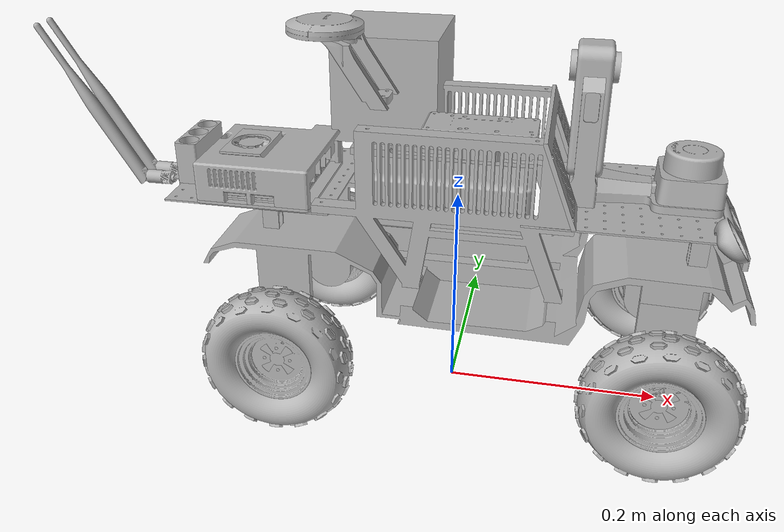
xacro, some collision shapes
<?xml version="1.0" ?>
<robot name="ugv" xmlns:xacro="http://www.ros.org/wiki/xacro">

<xacro:include filename="$(find ugv_description)/urdf/materials.xacro" />
<xacro:include filename="$(find ugv_description)/urdf/ugv.trans" />
<xacro:include filename="$(find ugv_description)/urdf/ugv.gazebo" />

<!-- Robot Footprint -->
<link name="base_link"/>

<joint name="base_joint" type="fixed">
  <parent link="base_link"/>
  <child link="base_plate"/>
  <origin xyz="-0.075 0.075 0.28375" rpy="0 0 0"/>
</joint>

<link name="base_plate">
  <inertial>
    <origin xyz="0.07499999999999711 -0.07499999999999997 0.0006625999999999998" rpy="0 0 0"/>
    <mass value="0.2720807790827568"/>
    <inertia ixx="0.00051" iyy="0.00051" izz="0.001021" ixy="0.0" iyz="0.0" ixz="0.0"/>
  </inertial>
  <visual>
    <origin xyz="0 0 0" rpy="0 0 0"/>
    <geometry>
      <mesh filename="package://ugv_description/meshes/base_plate.stl" scale="0.001 0.001 0.001"/>
    </geometry>
    <material name="silver"/>
  </visual>
  <collision>
    <origin xyz="0 0 0" rpy="0 0 0"/>
    <geometry>
      <box size="0.1 0.1 0.1"/>
    </geometry>
  </collision>
</link>

<link name="RightSupport_v1_1">
  <inertial>
    <origin xyz="0.07059984434936706 -0.0029361126231948476 -0.05717627321515905" rpy="0 0 0"/>
    <mass value="0.736158308473094"/>
    <inertia ixx="0.001003" iyy="0.003358" izz="0.002373" ixy="9e-06" iyz="-4e-06" ixz="5.4e-05"/>
  </inertial>
  <visual>
    <origin xyz="-0.0075 0.1425 0.000125" rpy="0 0 0"/>
    <geometry>
      <mesh filename="package://ugv_description/meshes/RightSupport_v1_1.stl" scale="0.001 0.001 0.001"/>
    </geometry>
    <material name="silver"/>
  </visual>
  <collision>
    <origin xyz="-0.0075 0.1425 0.000125" rpy="0 0 0"/>
    <geometry>
      <box size="0.1 0.1 0.1"/>
    </geometry>
  </collision>
</link>

<link name="LeftSupport_v1_1">
  <inertial>
    <origin xyz="0.07059984434936703 0.002936112623194766 -0.05717627321515946" rpy="0 0 0"/>
    <mass value="0.7361583084730937"/>
    <inertia ixx="0.001003" iyy="0.003358" izz="0.002373" ixy="-9e-06" iyz="4e-06" ixz="5.4e-05"/>
  </inertial>
  <visual>
    <origin xyz="-0.0075 0.0075 0.000125" rpy="0 0 0"/>
    <geometry>
      <mesh filename="package://ugv_description/meshes/LeftSupport_v1_1.stl" scale="0.001 0.001 0.001"/>
    </geometry>
    <material name="silver"/>
  </visual>
  <collision>
    <origin xyz="-0.0075 0.0075 0.000125" rpy="0 0 0"/>
    <geometry>
      <box size="0.1 0.1 0.1"/>
    </geometry>
  </collision>
</link>

<link name="Mounting_Plate_v3_v1_1">
  <inertial>
    <origin xyz="0.06749999995669587 0.06749999999999994 0.0007876040969322512" rpy="0 0 0"/>
    <mass value="0.2720807790827568"/>
    <inertia ixx="0.00051" iyy="0.00051" izz="0.001021" ixy="0.0" iyz="-0.0" ixz="-0.0"/>
  </inertial>
  <visual>
    <origin xyz="-0.1595 0.1425 0.07325" rpy="0 0 0"/>
    <geometry>
      <mesh filename="package://ugv_description/meshes/Mounting_Plate_v3_v1_1.stl" scale="0.001 0.001 0.001"/>
    </geometry>
    <material name="silver"/>
  </visual>
  <collision>
    <origin xyz="0 0 0" rpy="0 0 0"/>
    <geometry>
      <box size="0.27 0.27 0.003"/>
    </geometry>
  </collision>
</link>

<link name="Mounting_Plate_v3_v1__1__1">
  <inertial>
    <origin xyz="-0.06751639011574447 0.06751019132451663 -0.000787199999999974" rpy="0 0 0"/>
    <mass value="0.2721394685220584"/>
    <inertia ixx="0.00051" iyy="0.000511" izz="0.001021" ixy="0.0" iyz="-0.0" ixz="0.0"/>
  </inertial>
  <visual>
    <origin xyz="0.0345 0.1425 0.077325" rpy="0 0 0"/>
    <geometry>
      <mesh filename="package://ugv_description/meshes/Mounting_Plate_v3_v1__1__1.stl" scale="0.001 0.001 0.001"/>
    </geometry>
    <material name="silver"/>
  </visual>
  <collision>
    <origin xyz="0 0 0" rpy="0 0 0"/>
    <geometry>
      <box size="0.27 0.27 0.003"/>
    </geometry>
  </collision>
</link>

<link name="FrontCover_v1_1">
  <inertial>
    <origin xyz="0.013768274332071867 3.469446951953614e-16 -0.03192263359636471" rpy="0 0 0"/>
    <mass value="0.1610650752657614"/>
    <inertia ixx="0.00056" iyy="0.000104" izz="0.000484" ixy="-0.0" iyz="0.0" ixz="3.5e-05"/>
  </inertial>
  <visual>
    <origin xyz="-0.15 0.075 -0.00145" rpy="0 0 0"/>
    <geometry>
      <mesh filename="package://ugv_description/meshes/FrontCover_v1_1.stl" scale="0.001 0.001 0.001"/>
    </geometry>
    <material name="silver"/>
  </visual>
  <collision>
    <origin xyz="0 0 0" rpy="0 0 0"/>
    <geometry>
      <box size="0.15 0.15 0.003"/>
    </geometry>
  </collision>
</link>

<link name="CubeFC_v1_1">
  <inertial>
    <origin xyz="-0.0014080199813744643 9.577973379054638e-06 -0.007821832207682039" rpy="0 0 0"/>
    <mass value="0.1604759232839487"/>
    <inertia ixx="4.6e-05" iyy="0.000125" izz="0.000153" ixy="0.0" iyz="-0.0" ixz="-3e-06"/>
  </inertial>
  <visual>
    <origin xyz="-0.0975 0.1125 0.000125" rpy="0 0 0"/>
    <geometry>
      <mesh filename="package://ugv_description/meshes/CubeFC_v1_1.stl" scale="0.001 0.001 0.001"/>
    </geometry>
    <material name="silver"/>
  </visual>
  <collision>
    <origin xyz="0 0 0" rpy="0 0 0"/>
    <geometry>
      <box size="0.04 0.04 0.02"/>
    </geometry>
  </collision>
</link>

<link name="imu_link">
  <inertial>
    <mass value="0.001"/>
    <origin xyz="0 0 0" rpy="0 0 0"/>
    <inertia ixx="0.0001" ixy="0" ixz="0" iyy="0.0001" iyz="0" izz="0.0001"/>
  </inertial>
</link>

<joint name="imu_joint" type="fixed">
  <parent link="CubeFC_v1_1"/>  <!-- or base_plate -->
  <child link="imu_link"/>
  <origin xyz="0 0 0" rpy="0 0 0"/>
</joint>

<link name="FrontMountFull_v1_1">
  <inertial>
    <origin xyz="0.0279580578284907 -0.05375006604773858 -0.008637150125757026" rpy="0 0 0"/>
    <mass value="0.28337732555839074"/>
    <inertia ixx="0.000749" iyy="7.6e-05" izz="0.000737" ixy="-0.0" iyz="-0.0" ixz="3.2e-05"/>
  </inertial>
  <visual>
    <origin xyz="-0.2795 0.0225 0.07325" rpy="0 0 0"/>
    <geometry>
      <mesh filename="package://ugv_description/meshes/FrontMountFull_v1_1.stl" scale="0.001 0.001 0.001"/>
    </geometry>
    <material name="silver"/>
  </visual>
  <collision>
    <origin xyz="0 0 0" rpy="0 0 0"/>
    <geometry>
      <box size="0.08 0.135 0.02"/>
    </geometry>
  </collision>
</link>

<link name="FrontLight_v1_1">
  <inertial>
    <origin xyz="0.0008376443155606594 -4.214513980860257e-11 0.0005464825713972082" rpy="0 0 0"/>
    <mass value="0.0035944139646964697"/>
    <inertia ixx="0.0" iyy="0.0" izz="0.0" ixy="0.0" iyz="-0.0" ixz="0.0"/>
  </inertial>
  <visual>
    <origin xyz="-0.303776 0.00875 0.072039" rpy="0 0 0"/>
    <geometry>
      <mesh filename="package://ugv_description/meshes/FrontLight_v1_1.stl" scale="0.001 0.001 0.001"/>
    </geometry>
    <material name="silver"/>
  </visual>
  <collision>
    <origin xyz="-0.303776 0.00875 0.072039" rpy="0 0 0"/>
    <geometry>
      <box size="0.1 0.1 0.1"/>
    </geometry>
  </collision>
</link>

<link name="FrontLight_v1__1__1">
  <inertial>
    <origin xyz="0.0008376443155604374 -4.214514848221995e-11 0.0005464825713972637" rpy="0 0 0"/>
    <mass value="0.0035944139646964697"/>
    <inertia ixx="0.0" iyy="0.0" izz="0.0" ixy="-0.0" iyz="0.0" ixz="0.0"/>
  </inertial>
  <visual>
    <origin xyz="-0.303776 0.14375 0.072039" rpy="0 0 0"/>
    <geometry>
      <mesh filename="package://ugv_description/meshes/FrontLight_v1__1__1.stl" scale="0.001 0.001 0.001"/>
    </geometry>
    <material name="silver"/>
  </visual>
  <collision>
    <origin xyz="-0.303776 0.14375 0.072039" rpy="0 0 0"/>
    <geometry>
      <box size="0.1 0.1 0.1"/>
    </geometry>
  </collision>
</link>

<link name="Speaker_v1__1__1">
  <inertial>
    <origin xyz="-0.0018409431685812994 -0.018474000102515965 -0.0007080958537002691" rpy="0 0 0"/>
    <mass value="0.10222453174351626"/>
    <inertia ixx="1.4e-05" iyy="1e-05" izz="1.2e-05" ixy="0.0" iyz="-0.0" ixz="3e-06"/>
  </inertial>
  <visual>
    <origin xyz="-0.305098 0.031776 0.090129" rpy="0 0 0"/>
    <geometry>
      <mesh filename="package://ugv_description/meshes/Speaker_v1__1__1.stl" scale="0.001 0.001 0.001"/>
    </geometry>
    <material name="silver"/>
  </visual>
  <collision>
    <origin xyz="-0.305098 0.031776 0.090129" rpy="0 0 0"/>
    <geometry>
      <box size="0.1 0.1 0.1"/>
    </geometry>
  </collision>
</link>

<link name="Speaker_v1_1">
  <inertial>
    <origin xyz="-0.001840943168581466 0.018473999897483773 -0.0007080958537002691" rpy="0 0 0"/>
    <mass value="0.10222453174351626"/>
    <inertia ixx="1.4e-05" iyy="1e-05" izz="1.2e-05" ixy="0.0" iyz="-0.0" ixz="3e-06"/>
  </inertial>
  <visual>
    <origin xyz="-0.305098 0.120724 0.090129" rpy="0 0 0"/>
    <geometry>
      <mesh filename="package://ugv_description/meshes/Speaker_v1_1.stl" scale="0.001 0.001 0.001"/>
    </geometry>
    <material name="silver"/>
  </visual>
  <collision>
    <origin xyz="-0.305098 0.120724 0.090129" rpy="0 0 0"/>
    <geometry>
      <box size="0.1 0.1 0.1"/>
    </geometry>
  </collision>
</link>

<link name="JetsonCaseBottom_v1_1">
  <inertial>
    <origin xyz="0.0008375000953675105 0.0006130909919737915 0.0020196844512747336" rpy="0 0 0"/>
    <mass value="0.3621318554388684"/>
    <inertia ixx="0.000384" iyy="0.000313" izz="0.000696" ixy="-0.0" iyz="0.0" ixz="0.0"/>
  </inertial>
  <visual>
    <origin xyz="0.0945 0.0975 0.077325" rpy="0 0 0"/>
    <geometry>
      <mesh filename="package://ugv_description/meshes/JetsonCaseBottom_v1_1.stl" scale="0.001 0.001 0.001"/>
    </geometry>
    <material name="silver"/>
  </visual>
  <collision>
    <origin xyz="0 0 0" rpy="0 0 0"/>
    <geometry>
      <box size="0.10 0.06 0.02"/>
    </geometry>
  </collision>
</link>

<link name="KeyHolders_v3_v1_1">
  <inertial>
    <origin xyz="1.1102230246251565e-16 -0.011000000000001618 0.0068557844147923985" rpy="0 0 0"/>
    <mass value="0.1127827330477343"/>
    <inertia ixx="9e-06" iyy="7.7e-05" izz="8.2e-05" ixy="-0.0" iyz="-0.0" ixz="-0.0"/>
  </inertial>
  <visual>
    <origin xyz="0.102 0.0 0.077325" rpy="0 0 0"/>
    <geometry>
      <mesh filename="package://ugv_description/meshes/KeyHolders_v3_v1_1.stl" scale="0.001 0.001 0.001"/>
    </geometry>
    <material name="silver"/>
  </visual>
  <collision>
    <origin xyz="0.102 0.0 0.077325" rpy="0 0 0"/>
    <geometry>
      <box size="0.1 0.1 0.1"/>
    </geometry>
  </collision>
</link>

<link name="3ButtonMount_v1_1">
  <inertial>
    <origin xyz="-0.0007243164609797015 0.00040991617311861295 0.020396118581781475" rpy="0 0 0"/>
    <mass value="0.1671642206432581"/>
    <inertia ixx="8.2e-05" iyy="2.8e-05" izz="7.2e-05" ixy="-0.0" iyz="1e-06" ixz="-3e-06"/>
  </inertial>
  <visual>
    <origin xyz="0.1695 0.0825 0.077325" rpy="0 0 0"/>
    <geometry>
      <mesh filename="package://ugv_description/meshes/3ButtonMount_v1_1.stl" scale="0.001 0.001 0.001"/>
    </geometry>
    <material name="silver"/>
  </visual>
  <collision>
    <origin xyz="0.1695 0.0825 0.077325" rpy="0 0 0"/>
    <geometry>
      <box size="0.1 0.1 0.1"/>
    </geometry>
  </collision>
</link>

<link name="RFD900urdf_v1_1">
  <inertial>
    <origin xyz="0.17686818743142876 0.014444185052039829 0.07383024977920567" rpy="0 0 0"/>
    <mass value="0.014123139557848672"/>
    <inertia ixx="1e-06" iyy="2e-06" izz="2e-06" ixy="0.0" iyz="-0.0" ixz="-0.0"/>
  </inertial>
  <visual>
    <origin xyz="0.354 0.089465 0.157674" rpy="0 0 0"/>
    <geometry>
      <mesh filename="package://ugv_description/meshes/RFD900urdf_v1_1.stl" scale="0.001 0.001 0.001"/>
    </geometry>
    <material name="silver"/>
  </visual>
  <collision>
    <origin xyz="0.354 0.089465 0.157674" rpy="0 0 0"/>
    <geometry>
      <box size="0.1 0.1 0.1"/>
    </geometry>
  </collision>
</link>

<link name="RFDAntenna_v1__1__1">
  <inertial>
    <origin xyz="-0.05327541437241906 -0.0005609684221182937 0.04387217526099607" rpy="0 0 0"/>
    <mass value="0.13898413435589144"/>
    <inertia ixx="0.00019" iyy="0.000279" izz="9.1e-05" ixy="-2e-06" iyz="2e-06" ixz="0.000125"/>
  </inertial>
  <visual>
    <origin xyz="0.200447 0.085518 0.0864" rpy="0 0 0"/>
    <geometry>
      <mesh filename="package://ugv_description/meshes/RFDAntenna_v1__1__1.stl" scale="0.001 0.001 0.001"/>
    </geometry>
    <material name="silver"/>
  </visual>
  <collision>
    <origin xyz="0.200447 0.085518 0.0864" rpy="0 0 0"/>
    <geometry>
      <box size="0.1 0.1 0.1"/>
    </geometry>
  </collision>
</link>

<link name="RFDAntenna_v1_1">
  <inertial>
    <origin xyz="-0.05327541437241906 -0.000561144988710946 0.04387217526099607" rpy="0 0 0"/>
    <mass value="0.13898413435589144"/>
    <inertia ixx="0.00019" iyy="0.000279" izz="9.1e-05" ixy="-2e-06" iyz="2e-06" ixz="0.000125"/>
  </inertial>
  <visual>
    <origin xyz="0.200447 0.064482 0.0864" rpy="0 0 0"/>
    <geometry>
      <mesh filename="package://ugv_description/meshes/RFDAntenna_v1_1.stl" scale="0.001 0.001 0.001"/>
    </geometry>
    <material name="silver"/>
  </visual>
  <collision>
    <origin xyz="0.200447 0.064482 0.0864" rpy="0 0 0"/>
    <geometry>
      <box size="0.1 0.1 0.1"/>
    </geometry>
  </collision>
</link>

<link name="MountingClipFinal_v1_1">
  <inertial>
    <origin xyz="6.021003140510572e-10 0.00012285664644182646 -0.01094859483785321" rpy="0 0 0"/>
    <mass value="0.015079084020968157"/>
    <inertia ixx="2e-06" iyy="1e-06" izz="1e-06" ixy="-0.0" iyz="0.0" ixz="0.0"/>
  </inertial>
  <visual>
    <origin xyz="-0.2795 0.0075 0.07325" rpy="0 0 0"/>
    <geometry>
      <mesh filename="package://ugv_description/meshes/MountingClipFinal_v1_1.stl" scale="0.001 0.001 0.001"/>
    </geometry>
    <material name="silver"/>
  </visual>
  <collision>
    <origin xyz="-0.2795 0.0075 0.07325" rpy="0 0 0"/>
    <geometry>
      <box size="0.1 0.1 0.1"/>
    </geometry>
  </collision>
</link>

<link name="MountingClipFinal_v1__2__1">
  <inertial>
    <origin xyz="6.021003140510572e-10 -0.0001228566464420433 -0.01094859483785321" rpy="0 0 0"/>
    <mass value="0.015079084020968157"/>
    <inertia ixx="2e-06" iyy="1e-06" izz="1e-06" ixy="0.0" iyz="-0.0" ixz="0.0"/>
  </inertial>
  <visual>
    <origin xyz="-0.2795 0.1425 0.07325" rpy="0 0 0"/>
    <geometry>
      <mesh filename="package://ugv_description/meshes/MountingClipFinal_v1__2__1.stl" scale="0.001 0.001 0.001"/>
    </geometry>
    <material name="silver"/>
  </visual>
  <collision>
    <origin xyz="-0.2795 0.1425 0.07325" rpy="0 0 0"/>
    <geometry>
      <box size="0.1 0.1 0.1"/>
    </geometry>
  </collision>
</link>

<link name="MountingClipFinal_v1__1__1">
  <inertial>
    <origin xyz="2.7755575615628914e-17 0.0001228566464418707 -0.010948401821885334" rpy="0 0 0"/>
    <mass value="0.015079084020968157"/>
    <inertia ixx="2e-06" iyy="1e-06" izz="1e-06" ixy="-0.0" iyz="0.0" ixz="0.0"/>
  </inertial>
  <visual>
    <origin xyz="0.0795 0.0075 0.0789" rpy="0 0 0"/>
    <geometry>
      <mesh filename="package://ugv_description/meshes/MountingClipFinal_v1__1__1.stl" scale="0.001 0.001 0.001"/>
    </geometry>
    <material name="silver"/>
  </visual>
  <collision>
    <origin xyz="0.0795 0.0075 0.0789" rpy="0 0 0"/>
    <geometry>
      <box size="0.1 0.1 0.1"/>
    </geometry>
  </collision>
</link>

<link name="MountingClipFinal_v1__3__1">
  <inertial>
    <origin xyz="-1.3877787807814457e-17 -0.00012285664644201555 -0.010948401821885334" rpy="0 0 0"/>
    <mass value="0.015079084020968157"/>
    <inertia ixx="2e-06" iyy="1e-06" izz="1e-06" ixy="0.0" iyz="-0.0" ixz="-0.0"/>
  </inertial>
  <visual>
    <origin xyz="0.0795 0.1425 0.0789" rpy="0 0 0"/>
    <geometry>
      <mesh filename="package://ugv_description/meshes/MountingClipFinal_v1__3__1.stl" scale="0.001 0.001 0.001"/>
    </geometry>
    <material name="silver"/>
  </visual>
  <collision>
    <origin xyz="0.0795 0.1425 0.0789" rpy="0 0 0"/>
    <geometry>
      <box size="0.1 0.1 0.1"/>
    </geometry>
  </collision>
</link>

<link name="Anker_737_Power_Bank_v2_1">
  <inertial>
    <origin xyz="0.00018600331285374694 1.3459909545779358e-05 0.024976668590988266" rpy="0 0 0"/>
    <mass value="3.244300003402338"/>
    <inertia ixx="0.001445" iyy="0.007062" izz="0.007191" ixy="3e-06" iyz="-0.0" ixz="-6e-06"/>
  </inertial>
  <visual>
    <origin xyz="-0.066 0.075 0.111" rpy="0 0 0"/>
    <geometry>
      <mesh filename="package://ugv_description/meshes/Anker_737_Power_Bank_v2_1.stl" scale="0.001 0.001 0.001"/>
    </geometry>
    <material name="silver"/>
  </visual>
  <collision>
    <origin xyz="0 0 0.025" rpy="0 0 0"/>
    <geometry>
      <box size="0.16 0.08 0.03"/>
    </geometry>
  </collision>
</link>

<link name="Insta360MountwithLidar_v1_1">
  <inertial>
    <origin xyz="-0.08620121608122361 0.0018031246909665094 0.02067739351315072" rpy="0 0 0"/>
    <mass value="0.39145830701811263"/>
    <inertia ixx="0.000407" iyy="0.000883" izz="0.000749" ixy="2.3e-05" iyz="8e-06" ixz="0.000185"/>
  </inertial>
  <visual>
    <origin xyz="-0.302 0.075 0.071675" rpy="0 0 0"/>
    <geometry>
      <mesh filename="package://ugv_description/meshes/Insta360MountwithLidar_v1_1.stl" scale="0.001 0.001 0.001"/>
    </geometry>
    <material name="silver"/>
  </visual>
  <collision>
    <origin xyz="0 0 0" rpy="0 0 0"/>
    <geometry>
      <box size="0.08 0.06 0.03"/>
    </geometry>
  </collision>
</link>

<link name="360Cam_v4_1">
  <inertial>
    <origin xyz="-1.4985461386229915e-05 2.292090469256658e-05 0.05820122616633873" rpy="0 0 0"/>
    <mass value="1.0655405086527066"/>
    <inertia ixx="0.001224" iyy="0.001176" izz="0.000222" ixy="0.0" iyz="-1e-06" ixz="1e-06"/>
  </inertial>
  <visual>
    <origin xyz="-0.1847 0.075 0.050175" rpy="0 0 0"/>
    <geometry>
      <mesh filename="package://ugv_description/meshes/360Cam_v4_1.stl" scale="0.001 0.001 0.001"/>
    </geometry>
    <material name="silver"/>
  </visual>
  <collision>
    <origin xyz="0 0 0" rpy="0 0 0"/>
    <geometry>
      <sphere radius="0.03"/>
    </geometry>
  </collision>
</link>

<link name="frontcam_link">
  <inertial>
    <mass value="0.001"/>
    <origin xyz="0 0 0" rpy="0 0 0"/>
    <inertia ixx="0.0001" ixy="0" ixz="0" iyy="0.0001" iyz="0" izz="0.0001"/>
  </inertial>
</link>

<joint name="frontcam_joint" type="fixed">
  <parent link="360Cam_v4_1"/>
  <child link="frontcam_link"/>
  <!-- Offset for camera sensor relative to insta360 camera joint -->
  <origin xyz="0.022 0 0.093445" rpy="0 0 0"/>
</joint>

<link name="backcam_link">
  <inertial>
    <mass value="0.001"/>
    <origin xyz="0 0 0" rpy="0 0 0"/>
    <inertia ixx="0.0001" ixy="0" ixz="0" iyy="0.0001" iyz="0" izz="0.0001"/>
  </inertial>
</link>

<joint name="backcam_joint" type="fixed">
  <parent link="360Cam_v4_1"/>
  <child link="backcam_link"/>
  <!-- Offset for back camera sensor relative to insta360 camera joint -->
  <origin xyz="-0.022 0 0.093445" rpy="0 0 3.14159"/>
</joint>

<link name="RPLidarC1_v1_1">
  <inertial>
    <origin xyz="-0.027912648043109 3.528651926237858e-06 0.017945081991656946" rpy="0 0 0"/>
    <mass value="0.7886321106213883"/>
    <inertia ixx="0.000269" iyy="0.000272" izz="0.000333" ixy="0.0" iyz="0.0" ixz="-1e-06"/>
  </inertial>
  <visual>
    <origin xyz="-0.302 0.075 0.064675" rpy="0 0 0"/>
    <geometry>
      <mesh filename="package://ugv_description/meshes/RPLidarC1_v1_1.stl" scale="0.001 0.001 0.001"/>
    </geometry>
    <material name="silver"/>
  </visual>
  <collision>
    <origin xyz="0 0 0" rpy="1.5708 0 0"/>
    <geometry>
      <cylinder radius="0.04" length="0.04"/>
    </geometry>
  </collision>
</link>

<link name="360lidar_link">
  <inertial>
    <mass value="0.001"/>
    <origin xyz="0 0 0" rpy="0 0 0"/>
    <inertia ixx="0.0001" ixy="0" ixz="0" iyy="0.0001" iyz="0" izz="0.0001"/>
  </inertial>
</link>

<joint name="360lidar_joint" type="fixed">
  <parent link="RPLidarC1_v1_1"/>
  <child link="360lidar_link"/>
  <!-- Offset to actual lidar center for gazebo plugin -->
  <origin xyz="-0.02780 0 0.03310" rpy="0 0 3.141592653589793"/>
</joint>

<link name="Chassis_1">
  <inertial>
    <origin xyz="-0.049170473747549126 0.07227739952469993 0.07007959503991401" rpy="0 0 0"/>
    <mass value="8.527219963844384"/>
    <inertia ixx="0.046219" iyy="0.13905" izz="0.163926" ixy="0.000242" iyz="5.9e-05" ixz="-0.018042"/>
  </inertial>
  <visual>
    <origin xyz="-0.134 0.1475 0.21525" rpy="0 0 0"/>
    <geometry>
      <mesh filename="package://ugv_description/meshes/Chassis_1.stl" scale="0.001 0.001 0.001"/>
    </geometry>
    <material name="silver"/>
  </visual>
  <collision>
    <origin xyz="-0.05 0.07 0.08" rpy="0 0 0"/>
    <geometry>
      <box size="0.38 0.28 0.04"/>
    </geometry>
  </collision>
</link>

<link name="Jetson_Nano_v1_1">
  <inertial>
    <origin xyz="-0.0024318044992874682 -0.0016233833475976789 0.012114861153457043" rpy="0 0 0"/>
    <mass value="0.5576736000183575"/>
    <inertia ixx="0.000337" iyy="0.000338" izz="0.000569" ixy="-1e-06" iyz="3e-06" ixz="4.1e-05"/>
  </inertial>
  <visual>
    <origin xyz="0.09325 0.096887 0.073325" rpy="0 0 0"/>
    <geometry>
      <mesh filename="package://ugv_description/meshes/Jetson_Nano_v1_1.stl" scale="0.001 0.001 0.001"/>
    </geometry>
    <material name="silver"/>
  </visual>
  <collision>
    <origin xyz="0.09325 0.096887 0.073325" rpy="0 0 0"/>
    <geometry>
      <box size="0.1 0.1 0.1"/>
    </geometry>
  </collision>
</link>

<link name="JetsonCaseTop_v1_1">
  <inertial>
    <origin xyz="0.0013908649786080612 -0.0640825625362274 0.02282384239942188" rpy="0 0 0"/>
    <mass value="0.6020214833179027"/>
    <inertia ixx="0.001081" iyy="0.000876" izz="0.001827" ixy="-8.6e-05" iyz="1.6e-05" ixz="-3.4e-05"/>
  </inertial>
  <visual>
    <origin xyz="0.093662 0.039887 0.073325" rpy="0 0 0"/>
    <geometry>
      <mesh filename="package://ugv_description/meshes/JetsonCaseTop_v1_1.stl" scale="0.001 0.001 0.001"/>
    </geometry>
    <material name="silver"/>
  </visual>
  <collision>
    <origin xyz="0.093662 0.039887 0.073325" rpy="0 0 0"/>
    <geometry>
      <box size="0.1 0.1 0.1"/>
    </geometry>
  </collision>
</link>

<link name="LIPOBattery_v2_1">
  <inertial>
    <origin xyz="1.9268691540952343e-07 -1.3877787807814457e-17 0.012000000000000052" rpy="0 0 0"/>
    <mass value="1.31409"/>
    <inertia ixx="0.000285" iyy="0.002694" izz="0.002853" ixy="0.0" iyz="-0.0" ixz="0.0"/>
  </inertial>
  <visual>
    <origin xyz="-0.066 0.075 0.135" rpy="0 0 0"/>
    <geometry>
      <mesh filename="package://ugv_description/meshes/LIPOBattery_v2_1.stl" scale="0.001 0.001 0.001"/>
    </geometry>
    <material name="silver"/>
  </visual>
  <collision>
    <origin xyz="0 0 0.012" rpy="0 0 0"/>
    <geometry>
      <box size="0.15 0.10 0.04"/>
    </geometry>
  </collision>
</link>

<link name="TOFSensor_v3_1">
  <inertial>
    <origin xyz="-0.001000000540000101 -4.2930317584871647e-07 -1.9999999996411777e-07" rpy="0 0 0"/>
    <mass value="0.006781887896042989"/>
    <inertia ixx="1e-06" iyy="0.0" izz="0.0" ixy="0.0" iyz="-0.0" ixz="0.0"/>
  </inertial>
  <visual>
    <origin xyz="0.179 0.027743 0.078112" rpy="0 0 0"/>
    <geometry>
      <mesh filename="package://ugv_description/meshes/TOFSensor_v3_1.stl" scale="0.001 0.001 0.001"/>
    </geometry>
    <material name="silver"/>
  </visual>
  <collision>
    <origin xyz="0 0 0" rpy="0 0 0"/>
    <geometry>
      <box size="0.02 0.015 0.01"/>
    </geometry>
  </collision>
</link>

<link name="ToFsensor_link">
  <inertial>
    <mass value="0.001"/>
    <origin xyz="0 0 0" rpy="0 0 0"/>
    <inertia ixx="0.0001" ixy="0" ixz="0" iyy="0.0001" iyz="0" izz="0.0001"/>
  </inertial>
</link>

<joint name="ToFsensor_joint" type="fixed">
  <parent link="TOFSensor_v3_1"/>
  <child link="ToFsensor_link"/>
  <!-- Rotate by 180 so tof sensor looks back -->
  <origin xyz="0 0 0" rpy="0 0 3.14159"/>
</joint>

<link name="LeftHub_1">
  <inertial>
    <origin xyz="-1.558126948913996e-05 0.012161091745128617 -0.06707623869249998" rpy="0 0 0"/>
    <mass value="0.7546189423866138"/>
    <inertia ixx="0.000578" iyy="0.000586" izz="0.000234" ixy="-0.0" iyz="0.000107" ixz="1e-06"/>
  </inertial>
  <visual>
    <origin xyz="-0.263789 0.004911 0.134519" rpy="0 0 0"/>
    <geometry>
      <mesh filename="package://ugv_description/meshes/LeftHub_1.stl" scale="0.001 0.001 0.001"/>
    </geometry>
    <material name="silver"/>
  </visual>
  <collision>
    <origin xyz="0 0 -0.04" rpy="1.5708 0 0"/>
    <geometry>
      <cylinder radius="0.03" length="0.06"/>
    </geometry>
  </collision>
</link>

<link name="RightHub__1">
  <inertial>
    <origin xyz="-1.5581269489250982e-05 -0.012161091298093979 -0.06707623869250007" rpy="0 0 0"/>
    <mass value="0.7546189423866142"/>
    <inertia ixx="0.000578" iyy="0.000586" izz="0.000234" ixy="0.0" iyz="-0.000107" ixz="1e-06"/>
  </inertial>
  <visual>
    <origin xyz="-0.263789 0.145089 0.134519" rpy="0 0 0"/>
    <geometry>
      <mesh filename="package://ugv_description/meshes/RightHub__1.stl" scale="0.001 0.001 0.001"/>
    </geometry>
    <material name="silver"/>
  </visual>
  <collision>
    <origin xyz="0 0 -0.04" rpy="1.5708 0 0"/>
    <geometry>
      <cylinder radius="0.03" length="0.06"/>
    </geometry>
  </collision>
</link>

<link name="FrontLeft_1">
  <inertial>
    <origin xyz="-1.1807672128383295e-06 -0.000697357724859151 -2.316189179341066e-08" rpy="0 0 0"/>
    <mass value="0.7033756911731642"/>
    <inertia ixx="0.001091" iyy="0.001901" izz="0.001091" ixy="0.0" iyz="0.0" ixz="-0.0"/>
  </inertial>
  <visual>
    <origin xyz="-0.263789 -0.031089 0.213259" rpy="0 0 0"/>
    <geometry>
      <mesh filename="package://ugv_description/meshes/FrontLeft_1.stl" scale="0.001 0.001 0.001"/>
    </geometry>
    <material name="silver"/>
  </visual>
  <collision>
    <origin xyz="0 0 0" rpy="1.5708 0 0"/>
    <geometry>
      <cylinder radius="0.070" length="0.050"/>
    </geometry>
  </collision>
</link>

<link name="FrontRight_1">
  <inertial>
    <origin xyz="-5.22149610160394e-07 0.0006962930976707193 5.609553216379126e-08" rpy="0 0 0"/>
    <mass value="0.7033995559753448"/>
    <inertia ixx="0.001091" iyy="0.001901" izz="0.001091" ixy="0.0" iyz="-0.0" ixz="0.0"/>
  </inertial>
  <visual>
    <origin xyz="-0.263789 0.181089 0.213259" rpy="0 0 0"/>
    <geometry>
      <mesh filename="package://ugv_description/meshes/FrontRight_1.stl" scale="0.001 0.001 0.001"/>
    </geometry>
    <material name="silver"/>
  </visual>
  <collision>
    <origin xyz="0 0 0" rpy="1.5708 0 0"/>
    <geometry>
      <cylinder radius="0.070" length="0.050"/>
    </geometry>
  </collision>
</link>

<link name="BackLeft_1">
  <inertial>
    <origin xyz="-1.1807672128938407e-06 0.0023684851764025835 1.1309493497257961e-07" rpy="0 0 0"/>
    <mass value="0.7033756911731642"/>
    <inertia ixx="0.001091" iyy="0.001901" izz="0.001091" ixy="-0.0" iyz="0.0" ixz="0.0"/>
  </inertial>
  <visual>
    <origin xyz="0.071211 -0.031089 0.213259" rpy="0 0 0"/>
    <geometry>
      <mesh filename="package://ugv_description/meshes/BackLeft_1.stl" scale="0.001 0.001 0.001"/>
    </geometry>
    <material name="silver"/>
  </visual>
  <collision>
    <origin xyz="0 0 0" rpy="1.5708 0 0"/>
    <geometry>
      <cylinder radius="0.070" length="0.050"/>
    </geometry>
  </collision>
</link>

<link name="BackRight_1">
  <inertial>
    <origin xyz="-5.221496101881495e-07 -0.0023674196551448368 3.383751104313326e-08" rpy="0 0 0"/>
    <mass value="0.7033995559753448"/>
    <inertia ixx="0.001091" iyy="0.001901" izz="0.001091" ixy="-0.0" iyz="-0.0" ixz="-0.0"/>
  </inertial>
  <visual>
    <origin xyz="0.071211 0.181089 0.213259" rpy="0 0 0"/>
    <geometry>
      <mesh filename="package://ugv_description/meshes/BackRight_1.stl" scale="0.001 0.001 0.001"/>
    </geometry>
    <material name="silver"/>
  </visual>
  <collision>
    <origin xyz="0 0 0" rpy="1.5708 0 0"/>
    <geometry>
      <cylinder radius="0.070" length="0.050"/>
    </geometry>
  </collision>
</link>

<link name="GPSMount__1__v1_1">
  <inertial>
    <origin xyz="-0.021332153064071407 -0.007499991327375069 0.02673871532836188" rpy="0 0 0"/>
    <mass value="0.1455678711964743"/>
    <inertia ixx="8.3e-05" iyy="7.3e-05" izz="6.8e-05" ixy="0.0" iyz="-0.0" ixz="3e-05"/>
  </inertial>
  <visual>
    <origin xyz="-0.0075 0.0675 -0.00145" rpy="0 0 0"/>
    <geometry>
      <mesh filename="package://ugv_description/meshes/GPSMount__1__v1_1.stl" scale="0.001 0.001 0.001"/>
    </geometry>
    <material name="silver"/>
  </visual>
  <collision>
    <origin xyz="-0.0075 0.0675 -0.00145" rpy="0 0 0"/>
    <geometry>
      <box size="0.1 0.1 0.1"/>
    </geometry>
  </collision>
</link>

<link name="GPS_v1_1">
  <inertial>
    <origin xyz="0.0005012177154418637 0.010492718929645525 0.004731200250215797" rpy="0 0 0"/>
    <mass value="0.13196729677333102"/>
    <inertia ixx="4.7e-05" iyy="4.3e-05" izz="8.4e-05" ixy="-0.0" iyz="0.0" ixz="0.0"/>
  </inertial>
  <visual>
    <origin xyz="0.045886 0.08495 -0.05895" rpy="0 0 0"/>
    <geometry>
      <mesh filename="package://ugv_description/meshes/GPS_v1_1.stl" scale="0.001 0.001 0.001"/>
    </geometry>
    <material name="silver"/>
  </visual>
  <collision>
    <origin xyz="0.045886 0.08495 -0.05895" rpy="0 0 0"/>
    <geometry>
      <box size="0.1 0.1 0.1"/>
    </geometry>
  </collision>
</link>

<link name="GPSsensor_link">
  <inertial>
    <mass value="0.001"/>
    <origin xyz="0 0 0" rpy="0 0 0"/>
    <inertia ixx="0.0001" ixy="0" ixz="0" iyy="0.0001" iyz="0" izz="0.0001"/>
  </inertial>
</link>

<joint name="GPSsensor_joint" type="fixed">
  <parent link="GPS_v1_1"/>
  <child link="GPSsensor_link"/>
  <!-- Shift the link right so its at the center of the gps -->
  <origin xyz="0 0.00995 0" rpy="0 0 0"/>
</joint>

<joint name="Rigid 2" type="fixed">
  <origin xyz="0.0075 -0.1425 -0.000125" rpy="0 0 0"/>
  <parent link="base_plate"/>
  <child link="RightSupport_v1_1"/>
</joint>

<joint name="Rigid 3" type="fixed">
  <origin xyz="0.0075 -0.0075 -0.000125" rpy="0 0 0"/>
  <parent link="base_plate"/>
  <child link="LeftSupport_v1_1"/>
</joint>

<joint name="Rigid 4" type="fixed">
  <origin xyz="0.152 0.0 -0.073125" rpy="0 0 0"/>
  <parent link="RightSupport_v1_1"/>
  <child link="Mounting_Plate_v3_v1_1"/>
</joint>

<joint name="Rigid 6" type="fixed">
  <origin xyz="-0.042 0.0 -0.0772" rpy="0 0 0"/>
  <parent link="RightSupport_v1_1"/>
  <child link="Mounting_Plate_v3_v1__1__1"/>
</joint>

<joint name="Rigid 7" type="fixed">
  <origin xyz="0.15 -0.075 0.00145" rpy="0 0 0"/>
  <parent link="base_plate"/>
  <child link="FrontCover_v1_1"/>
</joint>

<joint name="Rigid 11" type="fixed">
  <origin xyz="0.0975 -0.1125 -0.000125" rpy="0 0 0"/>
  <parent link="base_plate"/>
  <child link="CubeFC_v1_1"/>
</joint>

<joint name="Rigid 12" type="fixed">
  <origin xyz="0.12 0.12 0.0" rpy="0 0 0"/>
  <parent link="Mounting_Plate_v3_v1_1"/>
  <child link="FrontMountFull_v1_1"/>
</joint>

<joint name="Rigid 13" type="fixed">
  <origin xyz="0.024276 0.01375 0.001211" rpy="0 0 0"/>
  <parent link="FrontMountFull_v1_1"/>
  <child link="FrontLight_v1_1"/>
</joint>

<joint name="Rigid 14" type="fixed">
  <origin xyz="0.024276 -0.12125 0.001211" rpy="0 0 0"/>
  <parent link="FrontMountFull_v1_1"/>
  <child link="FrontLight_v1__1__1"/>
</joint>

<joint name="Rigid 15" type="fixed">
  <origin xyz="0.025598 -0.009276 -0.016879" rpy="0 0 0"/>
  <parent link="FrontMountFull_v1_1"/>
  <child link="Speaker_v1__1__1"/>
</joint>

<joint name="Rigid 16" type="fixed">
  <origin xyz="0.025598 -0.098224 -0.016879" rpy="0 0 0"/>
  <parent link="FrontMountFull_v1_1"/>
  <child link="Speaker_v1_1"/>
</joint>

<joint name="Rigid 19" type="fixed">
  <origin xyz="-0.06 0.045 0.0" rpy="0 0 0"/>
  <parent link="Mounting_Plate_v3_v1__1__1"/>
  <child link="JetsonCaseBottom_v1_1"/>
</joint>

<joint name="Rigid 22" type="fixed">
  <origin xyz="-0.0675 0.1425 0.0" rpy="0 0 0"/>
  <parent link="Mounting_Plate_v3_v1__1__1"/>
  <child link="KeyHolders_v3_v1_1"/>
</joint>

<joint name="Rigid 23" type="fixed">
  <origin xyz="-0.135 0.06 0.0" rpy="0 0 0"/>
  <parent link="Mounting_Plate_v3_v1__1__1"/>
  <child link="3ButtonMount_v1_1"/>
</joint>

<joint name="Rigid 24" type="fixed">
  <origin xyz="-0.3195 0.053035 -0.080349" rpy="0 0 0"/>
  <parent link="Mounting_Plate_v3_v1__1__1"/>
  <child link="RFD900urdf_v1_1"/>
</joint>

<joint name="Rigid 25" type="fixed">
  <origin xyz="0.153553 0.003947 0.071274" rpy="0 0 0"/>
  <parent link="RFD900urdf_v1_1"/>
  <child link="RFDAntenna_v1__1__1"/>
</joint>

<joint name="Rigid 26" type="fixed">
  <origin xyz="0.153553 0.024983 0.071274" rpy="0 0 0"/>
  <parent link="RFD900urdf_v1_1"/>
  <child link="RFDAntenna_v1_1"/>
</joint>

<joint name="Rigid 27" type="fixed">
  <origin xyz="0.12 0.135 0.0" rpy="0 0 0"/>
  <parent link="Mounting_Plate_v3_v1_1"/>
  <child link="MountingClipFinal_v1_1"/>
</joint>

<joint name="Rigid 28" type="fixed">
  <origin xyz="0.12 0.0 0.0" rpy="0 0 0"/>
  <parent link="Mounting_Plate_v3_v1_1"/>
  <child link="MountingClipFinal_v1__2__1"/>
</joint>

<joint name="Rigid 29" type="fixed">
  <origin xyz="-0.045 0.135 -0.001575" rpy="0 0 0"/>
  <parent link="Mounting_Plate_v3_v1__1__1"/>
  <child link="MountingClipFinal_v1__1__1"/>
</joint>

<joint name="Rigid 30" type="fixed">
  <origin xyz="-0.045 0.0 -0.001575" rpy="0 0 0"/>
  <parent link="Mounting_Plate_v3_v1__1__1"/>
  <child link="MountingClipFinal_v1__3__1"/>
</joint>

<joint name="Rigid 31" type="fixed">
  <origin xyz="0.0 0.0 0.024" rpy="0 0 0"/>
  <parent link="LIPOBattery_v2_1"/>
  <child link="Anker_737_Power_Bank_v2_1"/>
</joint>

<joint name="Rigid 38" type="fixed">
  <origin xyz="0.1425 0.0675 0.001575" rpy="0 0 0"/>
  <parent link="Mounting_Plate_v3_v1_1"/>
  <child link="Insta360MountwithLidar_v1_1"/>
</joint>

<joint name="Rigid 39" type="fixed">
  <origin xyz="-0.1173 0.0 0.0215" rpy="0 0 0"/>
  <parent link="Insta360MountwithLidar_v1_1"/>
  <child link="360Cam_v4_1"/>
</joint>

<joint name="Rigid 40" type="fixed">
  <origin xyz="0.0 0.0 0.007" rpy="0 0 0"/>
  <parent link="Insta360MountwithLidar_v1_1"/>
  <child link="RPLidarC1_v1_1"/>
</joint>

<joint name="Rigid 42" type="fixed">
  <origin xyz="0.1265 -0.14 -0.215125" rpy="0 0 0"/>
  <parent link="LeftSupport_v1_1"/>
  <child link="Chassis_1"/>
</joint>

<joint name="Rigid 44" type="fixed">
  <origin xyz="0.00125 0.000613 0.004" rpy="0 0 0"/>
  <parent link="JetsonCaseBottom_v1_1"/>
  <child link="Jetson_Nano_v1_1"/>
</joint>

<joint name="Rigid 45" type="fixed">
  <origin xyz="0.000838 0.057613 0.004" rpy="0 0 0"/>
  <parent link="JetsonCaseBottom_v1_1"/>
  <child link="JetsonCaseTop_v1_1"/>
</joint>

<joint name="Rigid 46" type="fixed">
  <origin xyz="-0.068 0.0725 0.08025" rpy="0 0 0"/>
  <parent link="Chassis_1"/>
  <child link="LIPOBattery_v2_1"/>
</joint>

<joint name="Rigid 51" type="fixed">
  <origin xyz="-0.1445 0.114757 -0.000787" rpy="0 0 0"/>
  <parent link="Mounting_Plate_v3_v1__1__1"/>
  <child link="TOFSensor_v3_1"/>
</joint>

<joint name="left_steering" type="revolute">
  <origin xyz="0.129789 0.142589 0.080731" rpy="0 0 0"/>
  <parent link="Chassis_1"/>
  <child link="LeftHub_1"/>
  <axis xyz="-0.020219 0.0 -0.999796"/>
  <limit lower="-0.785398" upper="0.785398" effort="10" velocity="10"/>
</joint>

<joint name="right_steering" type="revolute">
  <origin xyz="0.129789 0.002411 0.080731" rpy="0 0 0"/>
  <parent link="Chassis_1"/>
  <child link="RightHub__1"/>
  <axis xyz="-0.020219 0.0 -0.999796"/>
  <limit lower="-0.785398" upper="0.785398" effort="10" velocity="10"/>
</joint>

<joint name="front_left_wheel" type="continuous">
  <origin xyz="0.0 0.036 -0.07874" rpy="0 0 0"/>
  <parent link="LeftHub_1"/>
  <child link="FrontLeft_1"/>
  <axis xyz="0.0 1.0 0.0"/>
</joint>

<joint name="front_right_wheel" type="continuous">
  <origin xyz="0.0 -0.036 -0.07874" rpy="3.14159 0 0"/>
  <parent link="RightHub__1"/>
  <child link="FrontRight_1"/>
  <axis xyz="0.0 -1.0 0.0"/>
</joint>

<joint name="back_left_wheel" type="continuous">
  <origin xyz="-0.205211 0.178589 0.001991" rpy="0 0 0"/>
  <parent link="Chassis_1"/>
  <child link="BackLeft_1"/>
  <axis xyz="0.0 1.0 0.0"/>
</joint>

<joint name="back_right_wheel" type="continuous">
  <origin xyz="-0.205211 -0.033589 0.001991" rpy="3.14159 0 0"/>
  <parent link="Chassis_1"/>
  <child link="BackRight_1"/>
  <axis xyz="0.0 -1.0 0.0"/>
</joint>

<joint name="Rigid 58" type="fixed">
  <origin xyz="0.0075 -0.0675 0.00145" rpy="0 0 0"/>
  <parent link="base_plate"/>
  <child link="GPSMount__1__v1_1"/>
</joint>

<joint name="Rigid 59" type="fixed">
  <origin xyz="-0.053386 -0.01745 0.0575" rpy="0 0 0"/>
  <parent link="GPSMount__1__v1_1"/>
  <child link="GPS_v1_1"/>
</joint>

</robot>

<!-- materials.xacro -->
<robot name="ugv" xmlns:xacro="http://www.ros.org/wiki/xacro" >

<material name="silver">
  <color rgba="0.700 0.700 0.700 1.000"/>
</material>

</robot>
